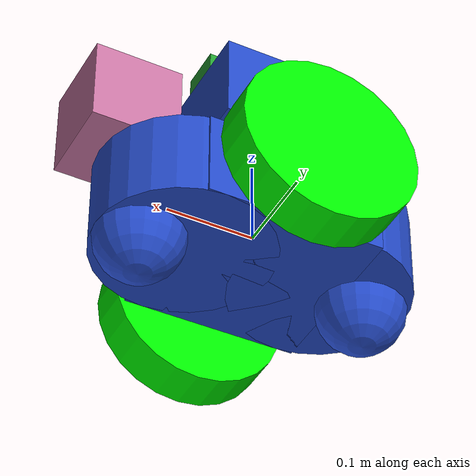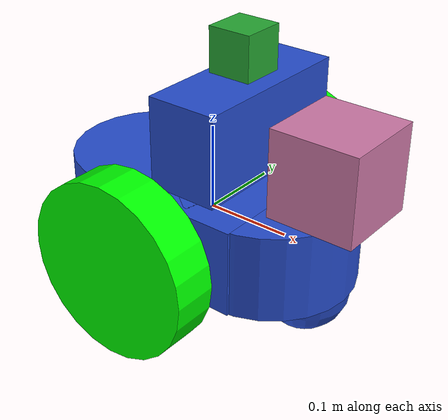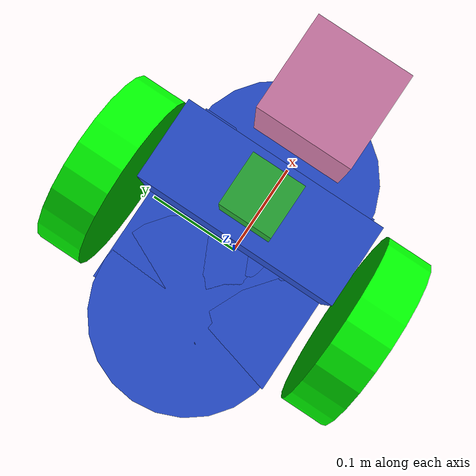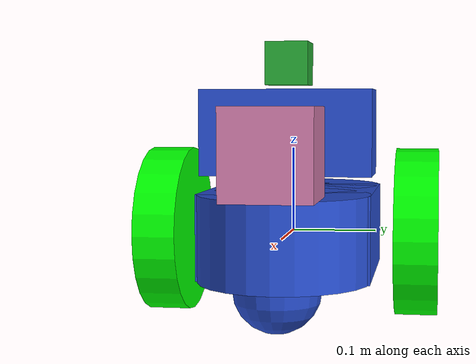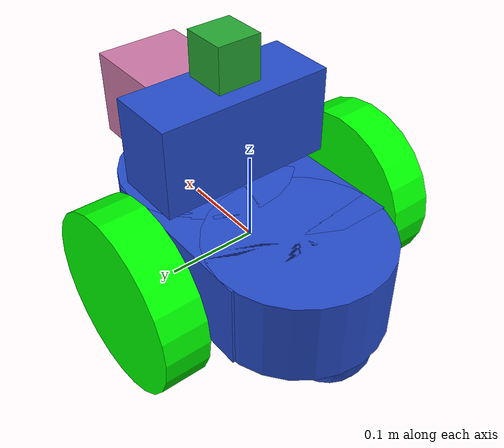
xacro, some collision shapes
<?xml version='1.0'?>

<robot name="slam_project" xmlns:xacro="http://www.ros.org/wiki/xacro">

  <xacro:include filename="$(find slam_project)/urdf/slam_project.gazebo" />

  <!-- Defining the colors used in this robot -->
  <material name="Black">
    <color rgba="0.0 0.0 0.0 1.0"/>
  </material>
  <material name="Red">
    <color rgba="0.8 0.0 0.0 1.0"/>
  </material>
  <material name="White">
    <color rgba="1.0 1.0 1.0 1.0"/>
  </material>
  <material name="Blue">
    <color rgba="0.0 0.0 0.8 1.0"/>
  </material>
  <material name="Green">
    <color rgba="0.0 1.0 0.0 1.0"/>
  </material>

  <link name="base_footprint">
  </link>

  <joint name="base_footprint_joint" type="fixed">
    <origin xyz="0 0 0" rpy="0 0 0" />
    <parent link="base_footprint"/>
    <child link="chassis" />
  </joint>

  <link name='chassis'>
    <pose>0 0 0.1 0 0 0</pose>
    <inertial>
      <mass value="15.0"/>
      <origin xyz="0.0 0 0" rpy=" 0 0 0"/>
      <inertia
          ixx="0.1" ixy="0" ixz="0"
          iyy="0.1" iyz="0"
          izz="0.1"
      />
    </inertial>

    <collision name='collision'>
      <origin xyz="0 0 0" rpy=" 0 0 0"/>
      <geometry>
        <box size=".4 .2 .1"/>
      </geometry>
    </collision>

    <collision name='back_caster_collision'>
      <origin xyz="-0.15 0 -0.05" rpy=" 0 0 0"/>
      <geometry>
        <sphere radius="0.05"/>
      </geometry>
      <surface>
        <friction>
          <ode>
            <mu>0</mu>
            <mu2>0</mu2>
            <slip1>1.0</slip1>
            <slip2>1.0</slip2>
          </ode>
        </friction>
      </surface>
    </collision>

    <collision name='front_caster_collision'>
      <origin xyz="0.15 0 -0.05" rpy=" 0 0 0"/>
      <geometry>
        <sphere radius="0.05"/>
      </geometry>
      <surface>
        <friction>
          <ode>
            <mu>0</mu>
            <mu2>0</mu2>
            <slip1>1.0</slip1>
            <slip2>1.0</slip2>
          </ode>
        </friction>
      </surface>
    </collision>

   <visual>
      <origin rpy="0 0 0" xyz="0 0 0"/>
      <geometry>
        <box size=".2 .2 .1"/>
      </geometry>
    </visual>

    <visual name="box_visual">
      <origin rpy="0.0 0 0.0" xyz="0.04 0 0.12"/>
      <geometry>
        <box size=".08 .2 .1"/>
      </geometry>
    </visual>

    <visual name='front_part_visual'>
      <origin xyz="0.08 0 0.0" rpy=" 0 0 0"/>
      <geometry>
        <cylinder length="0.1" radius="0.1"/>
      </geometry>
    </visual>

    <visual name='front_caster_visual'>
      <origin xyz="0.13 0 -0.05" rpy=" 0 0 0"/>
      <geometry>
        <sphere radius="0.05"/>
      </geometry>
    </visual>

    <visual name='back_part_visual'>
      <origin xyz="-0.08 0 0.0" rpy=" 0 0 0"/>
      <geometry>
        <cylinder length="0.1" radius="0.1"/>
      </geometry>
    </visual>

    <visual name='back_caster_visual'>
      <origin xyz="-0.13 0 -0.05" rpy=" 0 0 0"/>
      <geometry>
        <sphere radius="0.05"/>
      </geometry>
    </visual>

  </link>

  <gazebo reference="chassis">
    <material>Gazebo/Blue</material>
  </gazebo>

  <link name='left_wheel'>
    <inertial>
      <mass value="5.0"/>
      <origin xyz="0.0 0 0" rpy=" 0 0 0"/>
      <inertia
          ixx="0.1" ixy="0" ixz="0"
          iyy="0.1" iyz="0"
          izz="0.1"
      />
    </inertial>
    <collision name='left_wheel_collision'>
      <origin xyz="0.0 0.0 0.0" rpy=" 0.0 1.5707 1.5707"/>
      <geometry>
        <cylinder radius="0.1" length="0.05"/>
      </geometry>
      <surface>
        <friction>
          <ode>
            <mu>0</mu>
            <mu2>0</mu2>
            <slip1>1.0</slip1>
            <slip2>1.0</slip2>
          </ode>
        </friction>
      </surface>
    </collision>

    <visual name='left_wheel_visual'>
      <origin xyz="0.0 0.0 0.0" rpy=" 0.0 1.5707 1.5707"/>
      <geometry>
        <cylinder radius="0.1" length="0.05"/>
      </geometry>
      <material name="Green"/>
    </visual>

  </link>

  <gazebo reference="left_wheel">
    <material>Gazebo/Green</material>
  </gazebo>

  <joint type="continuous" name="left_wheel_hinge">
    <origin xyz="0.0 0.15 0" rpy="0 0 0"/>
    <child link="left_wheel"/>
    <parent link="chassis"/>
    <axis xyz="0 1 0" rpy="0 0 0"/>
    <limit effort="10000" velocity="1000"/>
    <joint_properties damping="1.0" friction="1.0"/>
  </joint>

  <link name='right_wheel'>
    <inertial>
      <mass value="5.0"/>
      <origin xyz="0.0 0 0" rpy=" 0 0 0"/>
      <material name="green"/>
      <inertia
          ixx="0.1" ixy="0" ixz="0"
          iyy="0.1" iyz="0"
          izz="0.1"
      />
    </inertial>
    <collision name='right_wheel_collision'>
      <origin xyz="0.0 0.0 0.0" rpy=" 0.0 1.5707 1.5707"/>
      <geometry>
        <cylinder radius="0.1" length="0.05"/>
      </geometry>
      <surface>
        <friction>
          <ode>
            <mu>0</mu>
            <mu2>0</mu2>
            <slip1>1.0</slip1>
            <slip2>1.0</slip2>
          </ode>
        </friction>
      </surface>
    </collision>

    <visual name='right_wheel_visual'>
      <origin xyz="0.0 0.0 0.0" rpy=" 0.0 1.5707 1.5707"/>
      <geometry>
        <cylinder radius="0.1" length="0.05"/>
      </geometry>
      <material name="Green"/>
    </visual>

  </link>

  <gazebo reference="right_wheel">
    <material>Gazebo/Green</material>
  </gazebo>

  <joint type="continuous" name="right_wheel_hinge">
    <origin xyz="0.0 -0.15 0" rpy="0 0 0"/>
    <child link="right_wheel"/>
    <parent link="chassis"/>
    <axis xyz="0 1 0" rpy="0 0 0"/>
    <limit effort="10000" velocity="1000"/>
    <joint_properties damping="1.0" friction="1.0"/>
  </joint>

  <link name='camera_link'>
    <inertial>
      <mass value="0.1"/>
      <origin xyz="0.0 0 0" rpy=" 0 0 0"/>
      <inertia
          ixx="1e-6" ixy="0" ixz="0"
          iyy="1e-6" iyz="0"
          izz="1e-6"
      />
    </inertial>
    <collision name='camera_collision'>
      <origin xyz="0.0 0.0 0.0" rpy="0.0 0.0 0.0"/>
      <geometry>
        <box size="0.05 0.05 0.05"/>
      </geometry>
      <surface>
        <friction>
          <ode>
            <mu>0</mu>
            <mu2>0</mu2>
            <slip1>1.0</slip1>
            <slip2>1.0</slip2>
          </ode>
        </friction>
      </surface>
    </collision>

    <visual name='camera_visual'>
      <origin xyz="0.0 0.0 0.0" rpy="0.0 0.0 0.0"/>
      <geometry>
        <box size="0.05 0.05 0.05"/>
        <!--mesh filename="package://slam_project/meshes/kinect.dae"/-->
      </geometry>
    </visual>

  </link>

  <gazebo reference="camera_link">
    <material>Gazebo/Green</material>
  </gazebo>

  <joint type="fixed" name="camera_joint">
    <origin xyz="0.04 0.0 0.2" rpy="0 0 0"/>
    <child link="camera_link"/>
    <parent link="chassis"/>
  </joint>

  <link name="camera_rgbd_frame">
    <inertial>
      <mass value="0.0001" />
      <origin xyz="0 0 0" />
      <inertia ixx="0.0001" ixy="0.0" ixz="0.0"
               iyy="0.0001" iyz="0.0"
               izz="0.0001" />
    </inertial>
  </link>

  <joint name="camera_rgbd_joint" type="fixed">
    <origin xyz="0.04 0 0.26" rpy="-1.57  0.0 -1.57" />
       <!--origin xyz="0.04 0 0.26" rpy="0 0 0" /-->
    <parent link="camera_link" />
    <child link="camera_rgbd_frame" />
  </joint>

  <link name='hokuyo'>
    <inertial>
      <mass value="0.1"/>
      <origin xyz="0.0 0.0 0.0" rpy="0.0 0.0 0.0"/>
      <inertia
          ixx="1e-6" ixy="0" ixz="0"
          iyy="1e-6" iyz="0"
          izz="1e-6"
      />
    </inertial>
    <collision name='hokuyo_collision'>
      <origin xyz="0.0 0.0 0.0" rpy="0.0 0.0 0.0"/>
      <geometry>
        <box size="0.1 0.1 0.1"/>
      </geometry>
      <surface>
        <friction>
          <ode>
            <mu>0</mu>
            <mu2>0</mu2>
            <slip1>1.0</slip1>
            <slip2>1.0</slip2>
          </ode>
        </friction>
      </surface>
    </collision>

    <visual name='hokuyo_visual'>
      <origin xyz="0.0 0.0 0.0" rpy="0.0 0.0 0.0"/>
      <geometry>
        <mesh filename="package://slam_project/meshes/hokuyo.dae"/>
      </geometry>
    </visual>

  </link>

  <joint type="continuous" name="hokuyo_joint">
    <origin xyz="0.16 0.0 0.1" rpy="0 0 0"/>
    <child link="hokuyo"/>
    <parent link="chassis"/>
    <axis xyz="0.0 1.0 0.0" rpy="0 0 0"/>
    <limit effort="10000" velocity="1000"/>
    <joint_properties damping="1.0" friction="1.0"/>
  </joint>

</robot>
